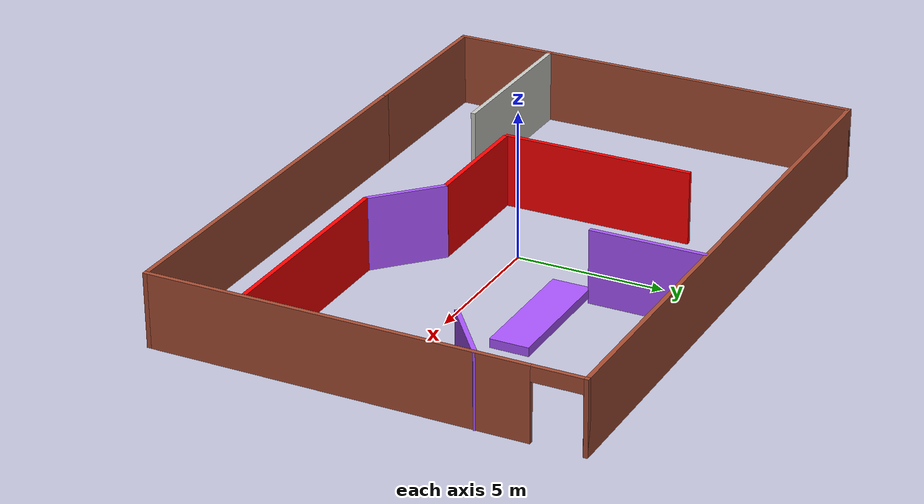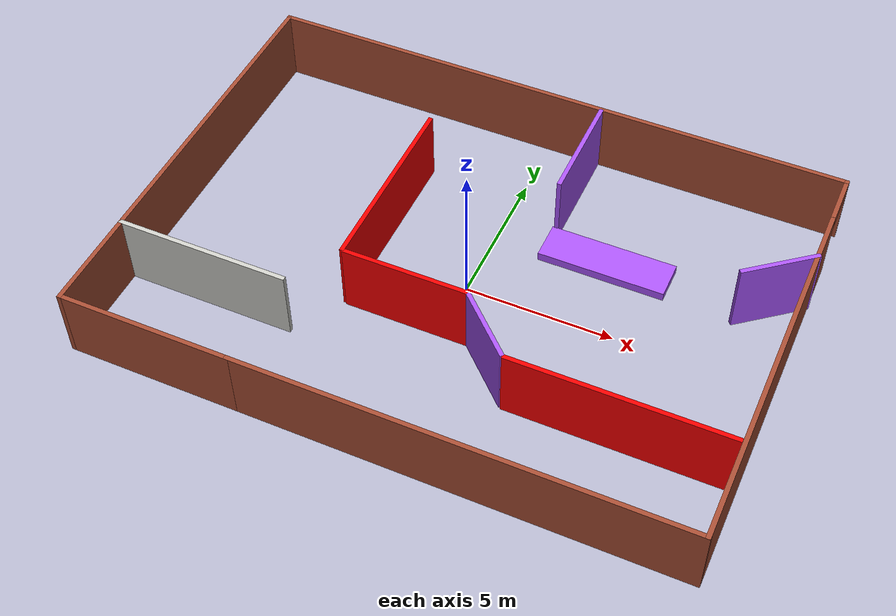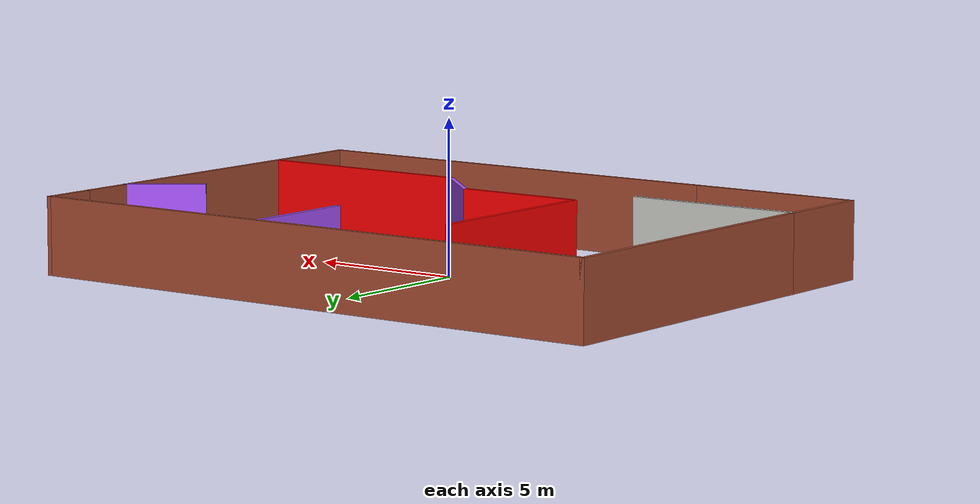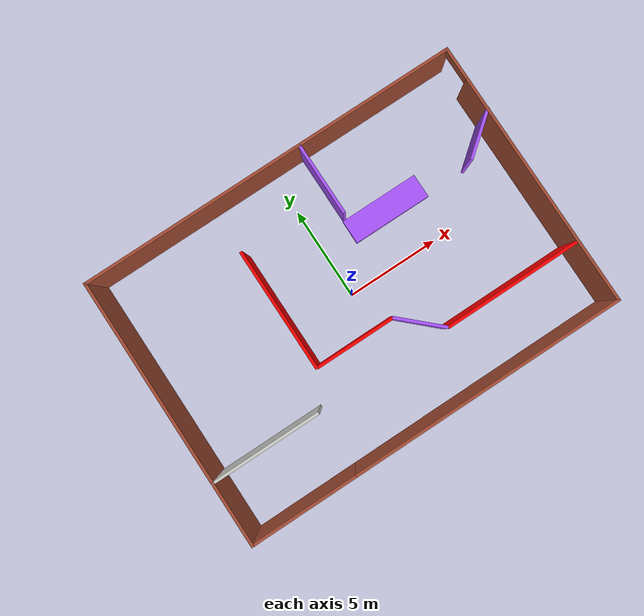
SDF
<?xml version='1.0'?>
<sdf version='1.6'>
  <model name='myhome'>
    <link name='Wall_0'>
      <pose frame=''>-10.175 1.75 0 0 -0 1.5708</pose>
      <self_collide>0</self_collide>
      <kinematic>0</kinematic>
      <visual name='Wall_0_Visual'>
        <pose frame=''>0 0 1.25 0 -0 0</pose>
        <geometry>
          <box>
            <size>11 0.15 2.5</size>
          </box>
        </geometry>
        <material>
          <script>
            <uri>file://media/materials/scripts/gazebo.material</uri>
            <name>Gazebo/Bricks</name>
          </script>
          <ambient>1 1 1 1</ambient>
          <shader type='pixel'/>
          <diffuse>1 1 1 1</diffuse>
          <specular>0.2 0.2 0.2 1</specular>
          <emissive>0 0 0 1</emissive>
        </material>
        <meta>
          <layer>0</layer>
        </meta>
        <transparency>0</transparency>
        <cast_shadows>1</cast_shadows>
      </visual>
      <collision name='Wall_0_Collision'>
        <laser_retro>0</laser_retro>
        <max_contacts>10</max_contacts>
        <pose frame=''>0 0 1.25 0 -0 0</pose>
        <geometry>
          <box>
            <size>11 0.15 2.5</size>
          </box>
        </geometry>
        <surface>
          <friction>
            <ode>
              <mu>1</mu>
              <mu2>1</mu2>
              <fdir1>0 0 0</fdir1>
              <slip1>0</slip1>
              <slip2>0</slip2>
            </ode>
            <torsional>
              <coefficient>1</coefficient>
              <patch_radius>0</patch_radius>
              <surface_radius>0</surface_radius>
              <use_patch_radius>1</use_patch_radius>
              <ode>
                <slip>0</slip>
              </ode>
            </torsional>
          </friction>
          <bounce>
            <restitution_coefficient>0</restitution_coefficient>
            <threshold>1e+06</threshold>
          </bounce>
          <contact>
            <collide_without_contact>0</collide_without_contact>
            <collide_without_contact_bitmask>1</collide_without_contact_bitmask>
            <collide_bitmask>1</collide_bitmask>
            <ode>
              <soft_cfm>0</soft_cfm>
              <soft_erp>0.2</soft_erp>
              <kp>1e+13</kp>
              <kd>1</kd>
              <max_vel>0.01</max_vel>
              <min_depth>0</min_depth>
            </ode>
            <bullet>
              <split_impulse>1</split_impulse>
              <split_impulse_penetration_threshold>-0.01</split_impulse_penetration_threshold>
              <soft_cfm>0</soft_cfm>
              <soft_erp>0.2</soft_erp>
              <kp>1e+13</kp>
              <kd>1</kd>
            </bullet>
          </contact>
        </surface>
      </collision>
    </link>
    <link name='Wall_1'>
      <pose frame=''>0 7.175 0 0 -0 0</pose>
      <self_collide>0</self_collide>
      <kinematic>0</kinematic>
      <visual name='Wall_1_Visual'>
        <pose frame=''>0 0 1.25 0 -0 0</pose>
        <geometry>
          <box>
            <size>20.5 0.15 2.5</size>
          </box>
        </geometry>
        <material>
          <script>
            <uri>file://media/materials/scripts/gazebo.material</uri>
            <name>Gazebo/Bricks</name>
          </script>
          <ambient>1 1 1 1</ambient>
          <shader type='pixel'/>
          <diffuse>1 1 1 1</diffuse>
          <specular>0.2 0.2 0.2 1</specular>
          <emissive>0 0 0 1</emissive>
        </material>
        <meta>
          <layer>0</layer>
        </meta>
        <transparency>0</transparency>
        <cast_shadows>1</cast_shadows>
      </visual>
      <collision name='Wall_1_Collision'>
        <laser_retro>0</laser_retro>
        <max_contacts>10</max_contacts>
        <pose frame=''>0 0 1.25 0 -0 0</pose>
        <geometry>
          <box>
            <size>20.5 0.15 2.5</size>
          </box>
        </geometry>
        <surface>
          <friction>
            <ode>
              <mu>1</mu>
              <mu2>1</mu2>
              <fdir1>0 0 0</fdir1>
              <slip1>0</slip1>
              <slip2>0</slip2>
            </ode>
            <torsional>
              <coefficient>1</coefficient>
              <patch_radius>0</patch_radius>
              <surface_radius>0</surface_radius>
              <use_patch_radius>1</use_patch_radius>
              <ode>
                <slip>0</slip>
              </ode>
            </torsional>
          </friction>
          <bounce>
            <restitution_coefficient>0</restitution_coefficient>
            <threshold>1e+06</threshold>
          </bounce>
          <contact>
            <collide_without_contact>0</collide_without_contact>
            <collide_without_contact_bitmask>1</collide_without_contact_bitmask>
            <collide_bitmask>1</collide_bitmask>
            <ode>
              <soft_cfm>0</soft_cfm>
              <soft_erp>0.2</soft_erp>
              <kp>1e+13</kp>
              <kd>1</kd>
              <max_vel>0.01</max_vel>
              <min_depth>0</min_depth>
            </ode>
            <bullet>
              <split_impulse>1</split_impulse>
              <split_impulse_penetration_threshold>-0.01</split_impulse_penetration_threshold>
              <soft_cfm>0</soft_cfm>
              <soft_erp>0.2</soft_erp>
              <kp>1e+13</kp>
              <kd>1</kd>
            </bullet>
          </contact>
        </surface>
      </collision>
    </link>
    <link name='Wall_2'>
      <pose frame=''>10.175 0 0 0 0 -1.5708</pose>
      <self_collide>0</self_collide>
      <kinematic>0</kinematic>
      <visual name='Wall_2_Visual_0'>
        <pose frame=''>-7.17641 0 1.25 0 -0 0</pose>
        <geometry>
          <box>
            <size>0.147184 0.15 2.5</size>
          </box>
        </geometry>
        <material>
          <script>
            <uri>file://media/materials/scripts/gazebo.material</uri>
            <name>Gazebo/Bricks</name>
          </script>
          <ambient>1 1 1 1</ambient>
          <shader type='pixel'/>
          <diffuse>1 1 1 1</diffuse>
          <specular>0.2 0.2 0.2 1</specular>
          <emissive>0 0 0 1</emissive>
        </material>
        <meta>
          <layer>0</layer>
        </meta>
        <transparency>0</transparency>
        <cast_shadows>1</cast_shadows>
      </visual>
      <visual name='Wall_2_Visual_1'>
        <pose frame=''>0.893682 0 1.25 0 -0 0</pose>
        <geometry>
          <box>
            <size>12.7126 0.15 2.5</size>
          </box>
        </geometry>
        <material>
          <script>
            <uri>file://media/materials/scripts/gazebo.material</uri>
            <name>Gazebo/Bricks</name>
          </script>
          <ambient>1 1 1 1</ambient>
          <shader type='pixel'/>
          <diffuse>1 1 1 1</diffuse>
          <specular>0.2 0.2 0.2 1</specular>
          <emissive>0 0 0 1</emissive>
        </material>
        <meta>
          <layer>0</layer>
        </meta>
        <transparency>0</transparency>
        <cast_shadows>1</cast_shadows>
      </visual>
      <visual name='Wall_2_Visual_2'>
        <pose frame=''>-6.28273 0 2.25 0 -0 0</pose>
        <geometry>
          <box>
            <size>1.64018 0.15 0.5</size>
          </box>
        </geometry>
        <material>
          <script>
            <uri>file://media/materials/scripts/gazebo.material</uri>
            <name>Gazebo/Bricks</name>
          </script>
          <ambient>1 1 1 1</ambient>
          <shader type='pixel'/>
          <diffuse>1 1 1 1</diffuse>
          <specular>0.2 0.2 0.2 1</specular>
          <emissive>0 0 0 1</emissive>
        </material>
        <meta>
          <layer>0</layer>
        </meta>
        <transparency>0</transparency>
        <cast_shadows>1</cast_shadows>
      </visual>
      <collision name='Wall_2_Collision_0'>
        <laser_retro>0</laser_retro>
        <max_contacts>10</max_contacts>
        <pose frame=''>-7.17641 0 1.25 0 -0 0</pose>
        <geometry>
          <box>
            <size>0.147184 0.15 2.5</size>
          </box>
        </geometry>
        <surface>
          <friction>
            <ode>
              <mu>1</mu>
              <mu2>1</mu2>
              <fdir1>0 0 0</fdir1>
              <slip1>0</slip1>
              <slip2>0</slip2>
            </ode>
            <torsional>
              <coefficient>1</coefficient>
              <patch_radius>0</patch_radius>
              <surface_radius>0</surface_radius>
              <use_patch_radius>1</use_patch_radius>
              <ode>
                <slip>0</slip>
              </ode>
            </torsional>
          </friction>
          <bounce>
            <restitution_coefficient>0</restitution_coefficient>
            <threshold>1e+06</threshold>
          </bounce>
          <contact>
            <collide_without_contact>0</collide_without_contact>
            <collide_without_contact_bitmask>1</collide_without_contact_bitmask>
            <collide_bitmask>1</collide_bitmask>
            <ode>
              <soft_cfm>0</soft_cfm>
              <soft_erp>0.2</soft_erp>
              <kp>1e+13</kp>
              <kd>1</kd>
              <max_vel>0.01</max_vel>
              <min_depth>0</min_depth>
            </ode>
            <bullet>
              <split_impulse>1</split_impulse>
              <split_impulse_penetration_threshold>-0.01</split_impulse_penetration_threshold>
              <soft_cfm>0</soft_cfm>
              <soft_erp>0.2</soft_erp>
              <kp>1e+13</kp>
              <kd>1</kd>
            </bullet>
          </contact>
        </surface>
      </collision>
      <collision name='Wall_2_Collision_1'>
        <laser_retro>0</laser_retro>
        <max_contacts>10</max_contacts>
        <pose frame=''>0.893682 0 1.25 0 -0 0</pose>
        <geometry>
          <box>
            <size>12.7126 0.15 2.5</size>
          </box>
        </geometry>
        <surface>
          <friction>
            <ode>
              <mu>1</mu>
              <mu2>1</mu2>
              <fdir1>0 0 0</fdir1>
              <slip1>0</slip1>
              <slip2>0</slip2>
            </ode>
            <torsional>
              <coefficient>1</coefficient>
              <patch_radius>0</patch_radius>
              <surface_radius>0</surface_radius>
              <use_patch_radius>1</use_patch_radius>
              <ode>
                <slip>0</slip>
              </ode>
            </torsional>
          </friction>
          <bounce>
            <restitution_coefficient>0</restitution_coefficient>
            <threshold>1e+06</threshold>
          </bounce>
          <contact>
            <collide_without_contact>0</collide_without_contact>
            <collide_without_contact_bitmask>1</collide_without_contact_bitmask>
            <collide_bitmask>1</collide_bitmask>
            <ode>
              <soft_cfm>0</soft_cfm>
              <soft_erp>0.2</soft_erp>
              <kp>1e+13</kp>
              <kd>1</kd>
              <max_vel>0.01</max_vel>
              <min_depth>0</min_depth>
            </ode>
            <bullet>
              <split_impulse>1</split_impulse>
              <split_impulse_penetration_threshold>-0.01</split_impulse_penetration_threshold>
              <soft_cfm>0</soft_cfm>
              <soft_erp>0.2</soft_erp>
              <kp>1e+13</kp>
              <kd>1</kd>
            </bullet>
          </contact>
        </surface>
      </collision>
      <collision name='Wall_2_Collision_2'>
        <laser_retro>0</laser_retro>
        <max_contacts>10</max_contacts>
        <pose frame=''>-6.28273 0 2.25 0 -0 0</pose>
        <geometry>
          <box>
            <size>1.64018 0.15 0.5</size>
          </box>
        </geometry>
        <surface>
          <friction>
            <ode>
              <mu>1</mu>
              <mu2>1</mu2>
              <fdir1>0 0 0</fdir1>
              <slip1>0</slip1>
              <slip2>0</slip2>
            </ode>
            <torsional>
              <coefficient>1</coefficient>
              <patch_radius>0</patch_radius>
              <surface_radius>0</surface_radius>
              <use_patch_radius>1</use_patch_radius>
              <ode>
                <slip>0</slip>
              </ode>
            </torsional>
          </friction>
          <bounce>
            <restitution_coefficient>0</restitution_coefficient>
            <threshold>1e+06</threshold>
          </bounce>
          <contact>
            <collide_without_contact>0</collide_without_contact>
            <collide_without_contact_bitmask>1</collide_without_contact_bitmask>
            <collide_bitmask>1</collide_bitmask>
            <ode>
              <soft_cfm>0</soft_cfm>
              <soft_erp>0.2</soft_erp>
              <kp>1e+13</kp>
              <kd>1</kd>
              <max_vel>0.01</max_vel>
              <min_depth>0</min_depth>
            </ode>
            <bullet>
              <split_impulse>1</split_impulse>
              <split_impulse_penetration_threshold>-0.01</split_impulse_penetration_threshold>
              <soft_cfm>0</soft_cfm>
              <soft_erp>0.2</soft_erp>
              <kp>1e+13</kp>
              <kd>1</kd>
            </bullet>
          </contact>
        </surface>
      </collision>
    </link>
    <link name='Wall_20'>
      <pose frame=''>6.46692 -3.86004 0 0 -0 0</pose>
      <self_collide>0</self_collide>
      <kinematic>0</kinematic>
      <visual name='Wall_20_Visual'>
        <pose frame=''>0 0 1.25 0 -0 0</pose>
        <geometry>
          <box>
            <size>7.25 0.15 2.5</size>
          </box>
        </geometry>
        <material>
          <script>
            <uri>file://media/materials/scripts/gazebo.material</uri>
            <name>Gazebo/Grey</name>
          </script>
          <ambient>1 0 0 1</ambient>
          <shader type='pixel'/>
          <diffuse>0.7 0.7 0.7 1</diffuse>
          <specular>0.01 0.01 0.01 1</specular>
          <emissive>0 0 0 1</emissive>
        </material>
        <meta>
          <layer>0</layer>
        </meta>
        <transparency>0</transparency>
        <cast_shadows>1</cast_shadows>
      </visual>
      <collision name='Wall_20_Collision'>
        <laser_retro>0</laser_retro>
        <max_contacts>10</max_contacts>
        <pose frame=''>0 0 1.25 0 -0 0</pose>
        <geometry>
          <box>
            <size>7.25 0.15 2.5</size>
          </box>
        </geometry>
        <surface>
          <friction>
            <ode>
              <mu>1</mu>
              <mu2>1</mu2>
              <fdir1>0 0 0</fdir1>
              <slip1>0</slip1>
              <slip2>0</slip2>
            </ode>
            <torsional>
              <coefficient>1</coefficient>
              <patch_radius>0</patch_radius>
              <surface_radius>0</surface_radius>
              <use_patch_radius>1</use_patch_radius>
              <ode>
                <slip>0</slip>
              </ode>
            </torsional>
          </friction>
          <bounce>
            <restitution_coefficient>0</restitution_coefficient>
            <threshold>1e+06</threshold>
          </bounce>
          <contact>
            <collide_without_contact>0</collide_without_contact>
            <collide_without_contact_bitmask>1</collide_without_contact_bitmask>
            <collide_bitmask>1</collide_bitmask>
            <ode>
              <soft_cfm>0</soft_cfm>
              <soft_erp>0.2</soft_erp>
              <kp>1e+13</kp>
              <kd>1</kd>
              <max_vel>0.01</max_vel>
              <min_depth>0</min_depth>
            </ode>
            <bullet>
              <split_impulse>1</split_impulse>
              <split_impulse_penetration_threshold>-0.01</split_impulse_penetration_threshold>
              <soft_cfm>0</soft_cfm>
              <soft_erp>0.2</soft_erp>
              <kp>1e+13</kp>
              <kd>1</kd>
            </bullet>
          </contact>
        </surface>
      </collision>
    </link>
    <link name='Wall_20_clone'>
      <pose frame=''>-1.16895 -2.06435 0 0 -0 0</pose>
      <self_collide>0</self_collide>
      <kinematic>0</kinematic>
      <inertial>
        <inertia>
          <ixx>0</ixx>
          <ixy>0</ixy>
          <ixz>0</ixz>
          <iyy>0</iyy>
          <iyz>0</iyz>
          <izz>0</izz>
        </inertia>
        <mass>0</mass>
        <pose frame=''>0 0 0 0 -0 0</pose>
      </inertial>
      <visual name='Wall_20_Visual'>
        <pose frame=''>0 0 1.25 0 -0 0</pose>
        <geometry>
          <box>
            <size>4.23266 0.15 2.5</size>
          </box>
        </geometry>
        <material>
          <script>
            <uri>file://media/materials/scripts/gazebo.material</uri>
            <name>Gazebo/Grey</name>
          </script>
          <ambient>1 0 0 1</ambient>
          <shader type='pixel'/>
          <diffuse>0.7 0.7 0.7 1</diffuse>
          <specular>0.01 0.01 0.01 1</specular>
          <emissive>0 0 0 1</emissive>
        </material>
        <meta>
          <layer>0</layer>
        </meta>
        <transparency>0</transparency>
        <cast_shadows>1</cast_shadows>
      </visual>
      <collision name='Wall_20_Collision'>
        <laser_retro>0</laser_retro>
        <max_contacts>10</max_contacts>
        <pose frame=''>0 0 1.25 0 -0 0</pose>
        <geometry>
          <box>
            <size>4.23266 0.15 2.5</size>
          </box>
        </geometry>
        <surface>
          <friction>
            <ode>
              <mu>1</mu>
              <mu2>1</mu2>
              <fdir1>0 0 0</fdir1>
              <slip1>0</slip1>
              <slip2>0</slip2>
            </ode>
            <torsional>
              <coefficient>1</coefficient>
              <patch_radius>0</patch_radius>
              <surface_radius>0</surface_radius>
              <use_patch_radius>1</use_patch_radius>
              <ode>
                <slip>0</slip>
              </ode>
            </torsional>
          </friction>
          <bounce>
            <restitution_coefficient>0</restitution_coefficient>
            <threshold>1e+06</threshold>
          </bounce>
          <contact>
            <collide_without_contact>0</collide_without_contact>
            <collide_without_contact_bitmask>1</collide_without_contact_bitmask>
            <collide_bitmask>1</collide_bitmask>
            <ode>
              <soft_cfm>0</soft_cfm>
              <soft_erp>0.2</soft_erp>
              <kp>1e+13</kp>
              <kd>1</kd>
              <max_vel>0.01</max_vel>
              <min_depth>0</min_depth>
            </ode>
            <bullet>
              <split_impulse>1</split_impulse>
              <split_impulse_penetration_threshold>-0.01</split_impulse_penetration_threshold>
              <soft_cfm>0</soft_cfm>
              <soft_erp>0.2</soft_erp>
              <kp>1e+13</kp>
              <kd>1</kd>
            </bullet>
          </contact>
        </surface>
      </collision>
    </link>
    <link name='Wall_22'>
      <pose frame=''>9.20711 2.92602 0 0 -0 0.673569</pose>
      <self_collide>0</self_collide>
      <kinematic>0</kinematic>
      <inertial>
        <inertia>
          <ixx>0</ixx>
          <ixy>0</ixy>
          <ixz>0</ixz>
          <iyy>0</iyy>
          <iyz>0</iyz>
          <izz>0</izz>
        </inertia>
        <mass>0</mass>
        <pose frame=''>0 0 0 0 -0 0</pose>
      </inertial>
      <visual name='Wall_22_Visual'>
        <pose frame=''>0 0 1.25 0 -0 0</pose>
        <geometry>
          <box>
            <size>2.65376 0.15 2.5</size>
          </box>
        </geometry>
        <material>
          <script>
            <uri>file://media/materials/scripts/gazebo.material</uri>
            <name>Gazebo/Grey</name>
          </script>
          <ambient>0.666667 0.333333 1 1</ambient>
          <shader type='pixel'/>
          <diffuse>0.7 0.7 0.7 1</diffuse>
          <specular>0.01 0.01 0.01 1</specular>
          <emissive>0 0 0 1</emissive>
        </material>
        <meta>
          <layer>0</layer>
        </meta>
        <transparency>0</transparency>
        <cast_shadows>1</cast_shadows>
      </visual>
      <collision name='Wall_22_Collision'>
        <laser_retro>0</laser_retro>
        <max_contacts>10</max_contacts>
        <pose frame=''>0 0 1.25 0 -0 0</pose>
        <geometry>
          <box>
            <size>2.65376 0.15 2.5</size>
          </box>
        </geometry>
        <surface>
          <friction>
            <ode>
              <mu>1</mu>
              <mu2>1</mu2>
              <fdir1>0 0 0</fdir1>
              <slip1>0</slip1>
              <slip2>0</slip2>
            </ode>
            <torsional>
              <coefficient>1</coefficient>
              <patch_radius>0</patch_radius>
              <surface_radius>0</surface_radius>
              <use_patch_radius>1</use_patch_radius>
              <ode>
                <slip>0</slip>
              </ode>
            </torsional>
          </friction>
          <bounce>
            <restitution_coefficient>0</restitution_coefficient>
            <threshold>1e+06</threshold>
          </bounce>
          <contact>
            <collide_without_contact>0</collide_without_contact>
            <collide_without_contact_bitmask>1</collide_without_contact_bitmask>
            <collide_bitmask>1</collide_bitmask>
            <ode>
              <soft_cfm>0</soft_cfm>
              <soft_erp>0.2</soft_erp>
              <kp>1e+13</kp>
              <kd>1</kd>
              <max_vel>0.01</max_vel>
              <min_depth>0</min_depth>
            </ode>
            <bullet>
              <split_impulse>1</split_impulse>
              <split_impulse_penetration_threshold>-0.01</split_impulse_penetration_threshold>
              <soft_cfm>0</soft_cfm>
              <soft_erp>0.2</soft_erp>
              <kp>1e+13</kp>
              <kd>1</kd>
            </bullet>
          </contact>
        </surface>
      </collision>
    </link>
    <link name='Wall_22_clone'>
      <pose frame=''>1.88203 -2.94579 0 0 0 -0.757872</pose>
      <inertial>
        <inertia>
          <ixx>0</ixx>
          <ixy>0</ixy>
          <ixz>0</ixz>
          <iyy>0</iyy>
          <iyz>0</iyz>
          <izz>0</izz>
        </inertia>
        <mass>0</mass>
        <pose frame=''>0 0 0 0 -0 0</pose>
      </inertial>
      <self_collide>0</self_collide>
      <kinematic>0</kinematic>
      <visual name='Wall_22_Visual'>
        <pose frame=''>0 0 1.25 0 -0 0</pose>
        <geometry>
          <box>
            <size>2.65376 0.15 2.5</size>
          </box>
        </geometry>
        <material>
          <script>
            <uri>file://media/materials/scripts/gazebo.material</uri>
            <name>Gazebo/Grey</name>
          </script>
          <ambient>0.666667 0.333333 1 1</ambient>
          <shader type='pixel'/>
          <diffuse>0.7 0.7 0.7 1</diffuse>
          <specular>0.01 0.01 0.01 1</specular>
          <emissive>0 0 0 1</emissive>
        </material>
        <meta>
          <layer>0</layer>
        </meta>
        <transparency>0</transparency>
        <cast_shadows>1</cast_shadows>
      </visual>
      <collision name='Wall_22_Collision'>
        <laser_retro>0</laser_retro>
        <max_contacts>10</max_contacts>
        <pose frame=''>0 0 1.25 0 -0 0</pose>
        <geometry>
          <box>
            <size>2.65376 0.15 2.5</size>
          </box>
        </geometry>
        <surface>
          <friction>
            <ode>
              <mu>1</mu>
              <mu2>1</mu2>
              <fdir1>0 0 0</fdir1>
              <slip1>0</slip1>
              <slip2>0</slip2>
            </ode>
            <torsional>
              <coefficient>1</coefficient>
              <patch_radius>0</patch_radius>
              <surface_radius>0</surface_radius>
              <use_patch_radius>1</use_patch_radius>
              <ode>
                <slip>0</slip>
              </ode>
            </torsional>
          </friction>
          <bounce>
            <restitution_coefficient>0</restitution_coefficient>
            <threshold>1e+06</threshold>
          </bounce>
          <contact>
            <collide_without_contact>0</collide_without_contact>
            <collide_without_contact_bitmask>1</collide_without_contact_bitmask>
            <collide_bitmask>1</collide_bitmask>
            <ode>
              <soft_cfm>0</soft_cfm>
              <soft_erp>0.2</soft_erp>
              <kp>1e+13</kp>
              <kd>1</kd>
              <max_vel>0.01</max_vel>
              <min_depth>0</min_depth>
            </ode>
            <bullet>
              <split_impulse>1</split_impulse>
              <split_impulse_penetration_threshold>-0.01</split_impulse_penetration_threshold>
              <soft_cfm>0</soft_cfm>
              <soft_erp>0.2</soft_erp>
              <kp>1e+13</kp>
              <kd>1</kd>
            </bullet>
          </contact>
        </surface>
      </collision>
    </link>
    <link name='Wall_3'>
      <pose frame=''>2.875 -7.175 0 0 -0 3.14159</pose>
      <self_collide>0</self_collide>
      <kinematic>0</kinematic>
      <visual name='Wall_3_Visual'>
        <pose frame=''>0 0 1.25 0 -0 0</pose>
        <geometry>
          <box>
            <size>14.75 0.15 2.5</size>
          </box>
        </geometry>
        <material>
          <script>
            <uri>file://media/materials/scripts/gazebo.material</uri>
            <name>Gazebo/Bricks</name>
          </script>
          <ambient>1 1 1 1</ambient>
          <shader type='pixel'/>
          <diffuse>1 1 1 1</diffuse>
          <specular>0.2 0.2 0.2 1</specular>
          <emissive>0 0 0 1</emissive>
        </material>
        <meta>
          <layer>0</layer>
        </meta>
        <transparency>0</transparency>
        <cast_shadows>1</cast_shadows>
      </visual>
      <collision name='Wall_3_Collision'>
        <laser_retro>0</laser_retro>
        <max_contacts>10</max_contacts>
        <pose frame=''>0 0 1.25 0 -0 0</pose>
        <geometry>
          <box>
            <size>14.75 0.15 2.5</size>
          </box>
        </geometry>
        <surface>
          <friction>
            <ode>
              <mu>1</mu>
              <mu2>1</mu2>
              <fdir1>0 0 0</fdir1>
              <slip1>0</slip1>
              <slip2>0</slip2>
            </ode>
            <torsional>
              <coefficient>1</coefficient>
              <patch_radius>0</patch_radius>
              <surface_radius>0</surface_radius>
              <use_patch_radius>1</use_patch_radius>
              <ode>
                <slip>0</slip>
              </ode>
            </torsional>
          </friction>
          <bounce>
            <restitution_coefficient>0</restitution_coefficient>
            <threshold>1e+06</threshold>
          </bounce>
          <contact>
            <collide_without_contact>0</collide_without_contact>
            <collide_without_contact_bitmask>1</collide_without_contact_bitmask>
            <collide_bitmask>1</collide_bitmask>
            <ode>
              <soft_cfm>0</soft_cfm>
              <soft_erp>0.2</soft_erp>
              <kp>1e+13</kp>
              <kd>1</kd>
              <max_vel>0.01</max_vel>
              <min_depth>0</min_depth>
            </ode>
            <bullet>
              <split_impulse>1</split_impulse>
              <split_impulse_penetration_threshold>-0.01</split_impulse_penetration_threshold>
              <soft_cfm>0</soft_cfm>
              <soft_erp>0.2</soft_erp>
              <kp>1e+13</kp>
              <kd>1</kd>
            </bullet>
          </contact>
        </surface>
      </collision>
    </link>
    <link name='Wall_36'>
      <pose frame=''>-3.30758 1.17504 0 0 0 -1.5708</pose>
      <self_collide>0</self_collide>
      <kinematic>0</kinematic>
      <inertial>
        <inertia>
          <ixx>0</ixx>
          <ixy>0</ixy>
          <ixz>0</ixz>
          <iyy>0</iyy>
          <iyz>0</iyz>
          <izz>0</izz>
        </inertia>
        <mass>0</mass>
        <pose frame=''>0 0 0 0 -0 0</pose>
      </inertial>
      <visual name='Wall_36_Visual'>
        <pose frame=''>0 0 1.25 0 -0 0</pose>
        <geometry>
          <box>
            <size>6.53365 0.15 2.5</size>
          </box>
        </geometry>
        <material>
          <script>
            <uri>file://media/materials/scripts/gazebo.material</uri>
            <name>Gazebo/Grey</name>
          </script>
          <ambient>1 0 0 1</ambient>
          <shader type='pixel'/>
          <diffuse>0.7 0.7 0.7 1</diffuse>
          <specular>0.01 0.01 0.01 1</specular>
          <emissive>0 0 0 1</emissive>
        </material>
        <meta>
          <layer>0</layer>
        </meta>
        <transparency>0</transparency>
        <cast_shadows>1</cast_shadows>
      </visual>
      <collision name='Wall_36_Collision'>
        <laser_retro>0</laser_retro>
        <max_contacts>10</max_contacts>
        <pose frame=''>0 0 1.25 0 -0 0</pose>
        <geometry>
          <box>
            <size>6.53365 0.15 2.5</size>
          </box>
        </geometry>
        <surface>
          <friction>
            <ode>
              <mu>1</mu>
              <mu2>1</mu2>
              <fdir1>0 0 0</fdir1>
              <slip1>0</slip1>
              <slip2>0</slip2>
            </ode>
            <torsional>
              <coefficient>1</coefficient>
              <patch_radius>0</patch_radius>
              <surface_radius>0</surface_radius>
              <use_patch_radius>1</use_patch_radius>
              <ode>
                <slip>0</slip>
              </ode>
            </torsional>
          </friction>
          <bounce>
            <restitution_coefficient>0</restitution_coefficient>
            <threshold>1e+06</threshold>
          </bounce>
          <contact>
            <collide_without_contact>0</collide_without_contact>
            <collide_without_contact_bitmask>1</collide_without_contact_bitmask>
            <collide_bitmask>1</collide_bitmask>
            <ode>
              <soft_cfm>0</soft_cfm>
              <soft_erp>0.2</soft_erp>
              <kp>1e+13</kp>
              <kd>1</kd>
              <max_vel>0.01</max_vel>
              <min_depth>0</min_depth>
            </ode>
            <bullet>
              <split_impulse>1</split_impulse>
              <split_impulse_penetration_threshold>-0.01</split_impulse_penetration_threshold>
              <soft_cfm>0</soft_cfm>
              <soft_erp>0.2</soft_erp>
              <kp>1e+13</kp>
              <kd>1</kd>
            </bullet>
          </contact>
        </surface>
      </collision>
    </link>
    <link name='Wall_38'>
      <pose frame=''>1.76127 5.23288 0 0 0 -1.57115</pose>
      <self_collide>0</self_collide>
      <kinematic>0</kinematic>
      <inertial>
        <inertia>
          <ixx>0</ixx>
          <ixy>0</ixy>
          <ixz>0</ixz>
          <iyy>0</iyy>
          <iyz>0</iyz>
          <izz>0</izz>
        </inertia>
        <mass>0</mass>
        <pose frame=''>0 0 0 0 -0 0</pose>
      </inertial>
      <visual name='Wall_38_Visual'>
        <pose frame=''>0 0 1.25 0 -0 0</pose>
        <geometry>
          <box>
            <size>3.86652 0.15 2.5</size>
          </box>
        </geometry>
        <material>
          <script>
            <uri>file://media/materials/scripts/gazebo.material</uri>
            <name>Gazebo/Grey</name>
          </script>
          <ambient>0.666667 0.333333 1 1</ambient>
          <shader type='pixel'/>
          <diffuse>0.7 0.7 0.7 1</diffuse>
          <specular>0.01 0.01 0.01 1</specular>
          <emissive>0 0 0 1</emissive>
        </material>
        <meta>
          <layer>0</layer>
        </meta>
        <transparency>0</transparency>
        <cast_shadows>1</cast_shadows>
      </visual>
      <collision name='Wall_38_Collision'>
        <laser_retro>0</laser_retro>
        <max_contacts>10</max_contacts>
        <pose frame=''>0 0 1.25 0 -0 0</pose>
        <geometry>
          <box>
            <size>3.86652 0.15 2.5</size>
          </box>
        </geometry>
        <surface>
          <friction>
            <ode>
              <mu>1</mu>
              <mu2>1</mu2>
              <fdir1>0 0 0</fdir1>
              <slip1>0</slip1>
              <slip2>0</slip2>
            </ode>
            <torsional>
              <coefficient>1</coefficient>
              <patch_radius>0</patch_radius>
              <surface_radius>0</surface_radius>
              <use_patch_radius>1</use_patch_radius>
              <ode>
                <slip>0</slip>
              </ode>
            </torsional>
          </friction>
          <bounce>
            <restitution_coefficient>0</restitution_coefficient>
            <threshold>1e+06</threshold>
          </bounce>
          <contact>
            <collide_without_contact>0</collide_without_contact>
            <collide_without_contact_bitmask>1</collide_without_contact_bitmask>
            <collide_bitmask>1</collide_bitmask>
            <ode>
              <soft_cfm>0</soft_cfm>
              <soft_erp>0.2</soft_erp>
              <kp>1e+13</kp>
              <kd>1</kd>
              <max_vel>0.01</max_vel>
              <min_depth>0</min_depth>
            </ode>
            <bullet>
              <split_impulse>1</split_impulse>
              <split_impulse_penetration_threshold>-0.01</split_impulse_penetration_threshold>
              <soft_cfm>0</soft_cfm>
              <soft_erp>0.2</soft_erp>
              <kp>1e+13</kp>
              <kd>1</kd>
            </bullet>
          </contact>
        </surface>
      </collision>
    </link>
    <link name='Wall_5'>
      <pose frame=''>-7.29998 -3.82493 0 0 -0 3.14157</pose>
      <self_collide>0</self_collide>
      <kinematic>0</kinematic>
      <visual name='Wall_5_Visual'>
        <pose frame=''>0 0 1.25 0 -0 0</pose>
        <geometry>
          <box>
            <size>5.89995 0.15 2.5</size>
          </box>
        </geometry>
        <material>
          <script>
            <uri>file://media/materials/scripts/gazebo.material</uri>
            <name>Gazebo/CeilingTiled</name>
          </script>
          <ambient>1 0 0 1</ambient>
          <shader type='pixel'/>
          <diffuse>1 1 1 1</diffuse>
          <specular>0 0 0 1</specular>
          <emissive>0 0 0 1</emissive>
        </material>
        <meta>
          <layer>0</layer>
        </meta>
        <transparency>0</transparency>
        <cast_shadows>1</cast_shadows>
      </visual>
      <collision name='Wall_5_Collision'>
        <laser_retro>0</laser_retro>
        <max_contacts>10</max_contacts>
        <pose frame=''>0 0 1.25 0 -0 0</pose>
        <geometry>
          <box>
            <size>5.89995 0.15 2.5</size>
          </box>
        </geometry>
        <surface>
          <friction>
            <ode>
              <mu>1</mu>
              <mu2>1</mu2>
              <fdir1>0 0 0</fdir1>
              <slip1>0</slip1>
              <slip2>0</slip2>
            </ode>
            <torsional>
              <coefficient>1</coefficient>
              <patch_radius>0</patch_radius>
              <surface_radius>0</surface_radius>
              <use_patch_radius>1</use_patch_radius>
              <ode>
                <slip>0</slip>
              </ode>
            </torsional>
          </friction>
          <bounce>
            <restitution_coefficient>0</restitution_coefficient>
            <threshold>1e+06</threshold>
          </bounce>
          <contact>
            <collide_without_contact>0</collide_without_contact>
            <collide_without_contact_bitmask>1</collide_without_contact_bitmask>
            <collide_bitmask>1</collide_bitmask>
            <ode>
              <soft_cfm>0</soft_cfm>
              <soft_erp>0.2</soft_erp>
              <kp>1e+13</kp>
              <kd>1</kd>
              <max_vel>0.01</max_vel>
              <min_depth>0</min_depth>
            </ode>
            <bullet>
              <split_impulse>1</split_impulse>
              <split_impulse_penetration_threshold>-0.01</split_impulse_penetration_threshold>
              <soft_cfm>0</soft_cfm>
              <soft_erp>0.2</soft_erp>
              <kp>1e+13</kp>
              <kd>1</kd>
            </bullet>
          </contact>
        </surface>
      </collision>
    </link>
    <link name='Wall_56'>
      <pose frame=''>3.79725 2.65825 0 0 0 -0.001022</pose>
      <self_collide>0</self_collide>
      <kinematic>0</kinematic>
      <inertial>
        <inertia>
          <ixx>0</ixx>
          <ixy>0</ixy>
          <ixz>0</ixz>
          <iyy>0</iyy>
          <iyz>0</iyz>
          <izz>0</izz>
        </inertia>
        <mass>0</mass>
        <pose frame=''>0 0 0 0 -0 0</pose>
      </inertial>
      <gravity>1</gravity>
      <visual name='Wall_56_Visual'>
        <pose frame=''>0 0 0.3 0 -0 0</pose>
        <geometry>
          <box>
            <size>4.31811 1.30351 0.3</size>
          </box>
        </geometry>
        <material>
          <script>
            <uri>file://media/materials/scripts/gazebo.material</uri>
            <name>Gazebo/Grey</name>
          </script>
          <ambient>0.667 0.333 1 1</ambient>
          <shader type='pixel'>
            <normal_map>__default__</normal_map>
          </shader>
          <diffuse>0.7 0.7 0.7 1</diffuse>
          <specular>0.01 0.01 0.01 1</specular>
          <emissive>0 0 0 1</emissive>
        </material>
        <meta>
          <layer>0</layer>
        </meta>
        <transparency>0</transparency>
        <cast_shadows>1</cast_shadows>
      </visual>
      <collision name='Wall_56_Collision'>
        <laser_retro>0</laser_retro>
        <max_contacts>10</max_contacts>
        <pose frame=''>0 0 1.25 0 -0 0</pose>
        <geometry>
          <box>
            <size>4.31811 1.30351 0.3</size>
          </box>
        </geometry>
        <surface>
          <friction>
            <ode>
              <mu>1</mu>
              <mu2>1</mu2>
              <fdir1>0 0 0</fdir1>
              <slip1>0</slip1>
              <slip2>0</slip2>
            </ode>
            <torsional>
              <coefficient>1</coefficient>
              <patch_radius>0</patch_radius>
              <surface_radius>0</surface_radius>
              <use_patch_radius>1</use_patch_radius>
              <ode>
                <slip>0</slip>
              </ode>
            </torsional>
          </friction>
          <bounce>
            <restitution_coefficient>0</restitution_coefficient>
            <threshold>1e+06</threshold>
          </bounce>
          <contact>
            <collide_without_contact>0</collide_without_contact>
            <collide_without_contact_bitmask>1</collide_without_contact_bitmask>
            <collide_bitmask>1</collide_bitmask>
            <ode>
              <soft_cfm>0</soft_cfm>
              <soft_erp>0.2</soft_erp>
              <kp>1e+13</kp>
              <kd>1</kd>
              <max_vel>0.01</max_vel>
              <min_depth>0</min_depth>
            </ode>
            <bullet>
              <split_impulse>1</split_impulse>
              <split_impulse_penetration_threshold>-0.01</split_impulse_penetration_threshold>
              <soft_cfm>0</soft_cfm>
              <soft_erp>0.2</soft_erp>
              <kp>1e+13</kp>
              <kd>1</kd>
            </bullet>
          </contact>
        </surface>
      </collision>
    </link>
    <link name='Wall_6'>
      <pose frame=''>-10.175 -5.49987 0 0 0 -1.5708</pose>
      <self_collide>0</self_collide>
      <kinematic>0</kinematic>
      <visual name='Wall_6_Visual'>
        <pose frame=''>0 0 1.25 0 -0 0</pose>
        <geometry>
          <box>
            <size>3.5 0.15 2.5</size>
          </box>
        </geometry>
        <material>
          <script>
            <uri>file://media/materials/scripts/gazebo.material</uri>
            <name>Gazebo/Bricks</name>
          </script>
          <ambient>1 1 1 1</ambient>
          <shader type='pixel'/>
          <diffuse>1 1 1 1</diffuse>
          <specular>0.2 0.2 0.2 1</specular>
          <emissive>0 0 0 1</emissive>
        </material>
        <meta>
          <layer>0</layer>
        </meta>
        <transparency>0</transparency>
        <cast_shadows>1</cast_shadows>
      </visual>
      <collision name='Wall_6_Collision'>
        <laser_retro>0</laser_retro>
        <max_contacts>10</max_contacts>
        <pose frame=''>0 0 1.25 0 -0 0</pose>
        <geometry>
          <box>
            <size>3.5 0.15 2.5</size>
          </box>
        </geometry>
        <surface>
          <friction>
            <ode>
              <mu>1</mu>
              <mu2>1</mu2>
              <fdir1>0 0 0</fdir1>
              <slip1>0</slip1>
              <slip2>0</slip2>
            </ode>
            <torsional>
              <coefficient>1</coefficient>
              <patch_radius>0</patch_radius>
              <surface_radius>0</surface_radius>
              <use_patch_radius>1</use_patch_radius>
              <ode>
                <slip>0</slip>
              </ode>
            </torsional>
          </friction>
          <bounce>
            <restitution_coefficient>0</restitution_coefficient>
            <threshold>1e+06</threshold>
          </bounce>
          <contact>
            <collide_without_contact>0</collide_without_contact>
            <collide_without_contact_bitmask>1</collide_without_contact_bitmask>
            <collide_bitmask>1</collide_bitmask>
            <ode>
              <soft_cfm>0</soft_cfm>
              <soft_erp>0.2</soft_erp>
              <kp>1e+13</kp>
              <kd>1</kd>
              <max_vel>0.01</max_vel>
              <min_depth>0</min_depth>
            </ode>
            <bullet>
              <split_impulse>1</split_impulse>
              <split_impulse_penetration_threshold>-0.01</split_impulse_penetration_threshold>
              <soft_cfm>0</soft_cfm>
              <soft_erp>0.2</soft_erp>
              <kp>1e+13</kp>
              <kd>1</kd>
            </bullet>
          </contact>
        </surface>
      </collision>
    </link>
    <link name='Wall_9'>
      <pose frame=''>-7.225 -7.175 0 0 -0 3.14159</pose>
      <self_collide>0</self_collide>
      <kinematic>0</kinematic>
      <visual name='Wall_9_Visual'>
        <pose frame=''>0 0 1.25 0 -0 0</pose>
        <geometry>
          <box>
            <size>5.75 0.15 2.5</size>
          </box>
        </geometry>
        <material>
          <script>
            <uri>file://media/materials/scripts/gazebo.material</uri>
            <name>Gazebo/Bricks</name>
          </script>
          <ambient>1 1 1 1</ambient>
          <shader type='pixel'/>
          <diffuse>1 1 1 1</diffuse>
          <specular>0.2 0.2 0.2 1</specular>
          <emissive>0 0 0 1</emissive>
        </material>
        <meta>
          <layer>0</layer>
        </meta>
        <transparency>0</transparency>
        <cast_shadows>1</cast_shadows>
      </visual>
      <collision name='Wall_9_Collision'>
        <laser_retro>0</laser_retro>
        <max_contacts>10</max_contacts>
        <pose frame=''>0 0 1.25 0 -0 0</pose>
        <geometry>
          <box>
            <size>5.75 0.15 2.5</size>
          </box>
        </geometry>
        <surface>
          <friction>
            <ode>
              <mu>1</mu>
              <mu2>1</mu2>
              <fdir1>0 0 0</fdir1>
              <slip1>0</slip1>
              <slip2>0</slip2>
            </ode>
            <torsional>
              <coefficient>1</coefficient>
              <patch_radius>0</patch_radius>
              <surface_radius>0</surface_radius>
              <use_patch_radius>1</use_patch_radius>
              <ode>
                <slip>0</slip>
              </ode>
            </torsional>
          </friction>
          <bounce>
            <restitution_coefficient>0</restitution_coefficient>
            <threshold>1e+06</threshold>
          </bounce>
          <contact>
            <collide_without_contact>0</collide_without_contact>
            <collide_without_contact_bitmask>1</collide_without_contact_bitmask>
            <collide_bitmask>1</collide_bitmask>
            <ode>
              <soft_cfm>0</soft_cfm>
              <soft_erp>0.2</soft_erp>
              <kp>1e+13</kp>
              <kd>1</kd>
              <max_vel>0.01</max_vel>
              <min_depth>0</min_depth>
            </ode>
            <bullet>
              <split_impulse>1</split_impulse>
              <split_impulse_penetration_threshold>-0.01</split_impulse_penetration_threshold>
              <soft_cfm>0</soft_cfm>
              <soft_erp>0.2</soft_erp>
              <kp>1e+13</kp>
              <kd>1</kd>
            </bullet>
          </contact>
        </surface>
      </collision>
    </link>
    <static>1</static>
    <allow_auto_disable>1</allow_auto_disable>
  </model>
</sdf>
